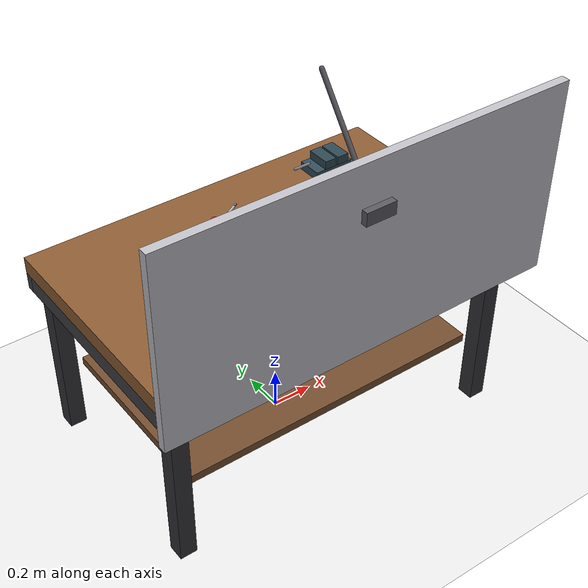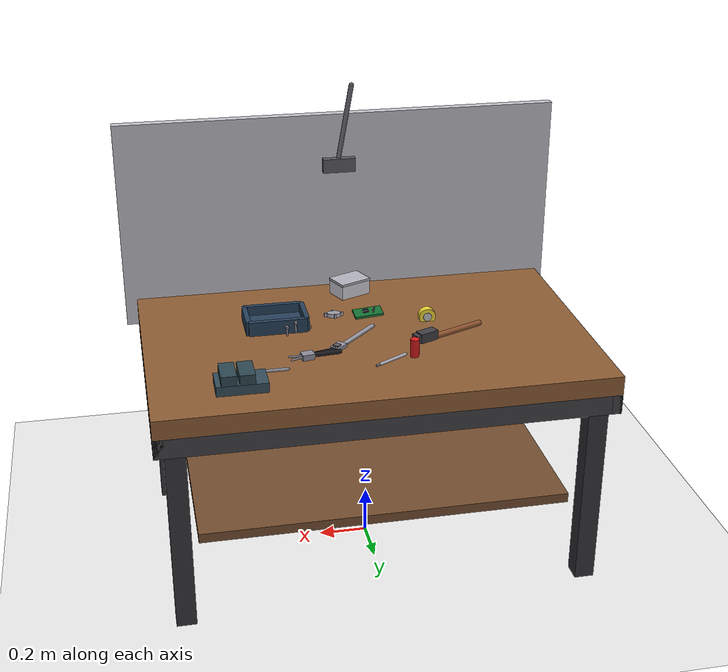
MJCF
<mujoco model="cluttered_workbench">
  <compiler angle="degree" coordinate="local"/>
  <option timestep="0.002" gravity="0 0 -9.81" integrator="RK4"/>
  <size njmax="2000" nconmax="500"/>
  <visual>
    <headlight diffuse="0.7 0.7 0.7" ambient="0.25 0.25 0.25" specular="0.2 0.2 0.2"/>
    <rgba haze="0 0 0 0"/>
  </visual>

  <asset>
    <!-- No textures/materials per guidelines -->
  </asset>

  <worldbody>
    <!-- Ground -->
    <geom name="ground" type="plane" pos="0 0 0" size="5 5 0.1"
          rgba="0.92 0.92 0.92 1" friction="1 0.01 0.001"/>

    <!-- Workbench: tabletop and legs -->
    <body name="bench" pos="0 0 0">
      <!-- Tabletop -->
      <geom name="tabletop" type="box" pos="0 0 0.9" size="0.9 0.55 0.04"
            rgba="0.55 0.36 0.20 1" friction="1.2 0.01 0.001"/>

      <!-- Apron/frame -->
      <geom name="apron_front" type="box" pos="0 0.53 0.82" size="0.9 0.02 0.04"
            rgba="0.25 0.25 0.27 1"/>
      <geom name="apron_back" type="box" pos="0 -0.53 0.82" size="0.9 0.02 0.04"
            rgba="0.25 0.25 0.27 1"/>
      <geom name="apron_left" type="box" pos="-0.88 0 0.82" size="0.02 0.55 0.04"
            rgba="0.25 0.25 0.27 1"/>
      <geom name="apron_right" type="box" pos="0.88 0 0.82" size="0.02 0.55 0.04"
            rgba="0.25 0.25 0.27 1"/>

      <!-- Legs -->
      <geom name="leg_fl" type="box" pos="-0.82 0.48 0.45" size="0.04 0.04 0.45"
            rgba="0.20 0.20 0.22 1"/>
      <geom name="leg_fr" type="box" pos="0.82 0.48 0.45" size="0.04 0.04 0.45"
            rgba="0.20 0.20 0.22 1"/>
      <geom name="leg_bl" type="box" pos="-0.82 -0.48 0.45" size="0.04 0.04 0.45"
            rgba="0.20 0.20 0.22 1"/>
      <geom name="leg_br" type="box" pos="0.82 -0.48 0.45" size="0.04 0.04 0.45"
            rgba="0.20 0.20 0.22 1"/>

      <!-- Lower shelf -->
      <geom name="shelf" type="box" pos="0 0 0.35" size="0.75 0.45 0.02"
            rgba="0.45 0.30 0.18 1" friction="1.1 0.01 0.001"/>

      <!-- Backboard / small wall behind bench -->
      <geom name="backboard" type="box" pos="0 -0.62 1.25" size="0.95 0.02 0.45"
            rgba="0.75 0.75 0.78 1"/>

      <!-- Pegboard holes implied; no textures -->

      <!-- CLUTTER ON TABLETOP (all free-moving objects) -->

      <!-- Hammer -->
      <body name="hammer" pos="-0.35 0.10 0.98" quat="0.98 0.0 0.0 0.2">
        <freejoint name="hammer_free"/>
        <!-- Handle -->
        <geom name="hammer_handle" type="capsule" fromto="-0.12 0 0  0.12 0 0" size="0.012"
              rgba="0.55 0.32 0.18 1" mass="0.25" friction="1.2 0.01 0.001"/>
        <!-- Head -->
        <geom name="hammer_head" type="box" pos="0.145 0 0.015" size="0.04 0.02 0.02"
              rgba="0.25 0.25 0.27 1" mass="0.5" friction="1.0 0.01 0.001"/>
        <!-- Claw-ish end as another box -->
        <geom name="hammer_claw" type="box" pos="0.19 0 0.015" size="0.015 0.02 0.015"
              rgba="0.25 0.25 0.27 1" mass="0.15"/>
      </body>

      <!-- Screwdriver -->
      <body name="screwdriver" pos="-0.10 0.25 0.965" quat="0.9659 0 0 0.2588">
        <freejoint name="screwdriver_free"/>
        <!-- Handle -->
        <geom name="screwdriver_handle" type="cylinder" pos="-0.06 0 0" size="0.018 0.05"
              rgba="0.85 0.10 0.10 1" mass="0.12" friction="1.1 0.01 0.001"/>
        <!-- Shaft -->
        <geom name="screwdriver_shaft" type="capsule" fromto="-0.01 0 0  0.12 0 0" size="0.006"
              rgba="0.70 0.70 0.75 1" mass="0.08" friction="0.8 0.01 0.001"/>
        <!-- Tip -->
        <geom name="screwdriver_tip" type="box" pos="0.135 0 0" size="0.008 0.004 0.003"
              rgba="0.55 0.55 0.60 1" mass="0.01"/>
      </body>

      <!-- Wrench -->
      <body name="wrench" pos="0.05 0.05 0.965" quat="0.9239 0 0 0.3827">
        <freejoint name="wrench_free"/>
        <geom name="wrench_handle" type="capsule" fromto="-0.12 0 0  0.10 0 0" size="0.009"
              rgba="0.60 0.60 0.65 1" mass="0.18" friction="0.9 0.01 0.001"/>
        <geom name="wrench_jaw" type="box" pos="0.125 0 0.004" size="0.03 0.02 0.008"
              rgba="0.60 0.60 0.65 1" mass="0.12"/>
        <geom name="wrench_jaw_gap" type="box" pos="0.135 0.0 0.014" size="0.012 0.012 0.004"
              rgba="0.35 0.35 0.38 1" mass="0.01"/>
      </body>

      <!-- Pliers -->
      <body name="pliers" pos="0.25 0.18 0.965" quat="0.9962 0 0 0.0872">
        <freejoint name="pliers_free"/>
        <!-- Two handles -->
        <geom name="pliers_handle1" type="capsule" fromto="-0.11 -0.01 0  0.00 0.00 0" size="0.010"
              rgba="0.10 0.10 0.12 1" mass="0.10" friction="1.0 0.01 0.001"/>
        <geom name="pliers_handle2" type="capsule" fromto="-0.11 0.01 0  0.00 0.00 0" size="0.010"
              rgba="0.10 0.10 0.12 1" mass="0.10" friction="1.0 0.01 0.001"/>
        <!-- Head -->
        <geom name="pliers_head" type="box" pos="0.02 0 0.0" size="0.025 0.02 0.012"
              rgba="0.55 0.55 0.60 1" mass="0.12" friction="0.9 0.01 0.001"/>
        <!-- Jaws -->
        <geom name="pliers_jaw1" type="capsule" fromto="0.04 0.006 0  0.09 0.016 0" size="0.004"
              rgba="0.55 0.55 0.60 1" mass="0.03"/>
        <geom name="pliers_jaw2" type="capsule" fromto="0.04 -0.006 0  0.09 -0.016 0" size="0.004"
              rgba="0.55 0.55 0.60 1" mass="0.03"/>
      </body>

      <!-- Small parts tray -->
      <body name="parts_tray" pos="0.35 -0.15 0.95" quat="1 0 0 0">
        <freejoint name="parts_tray_free"/>
        <geom name="tray_base" type="box" pos="0 0 0.01" size="0.12 0.08 0.01"
              rgba="0.15 0.25 0.35 1" mass="0.25" friction="1.1 0.01 0.001"/>
        <geom name="tray_wall_front" type="box" pos="0 0.08 0.03" size="0.12 0.01 0.03"
              rgba="0.15 0.25 0.35 1" mass="0.05"/>
        <geom name="tray_wall_back" type="box" pos="0 -0.08 0.03" size="0.12 0.01 0.03"
              rgba="0.15 0.25 0.35 1" mass="0.05"/>
        <geom name="tray_wall_left" type="box" pos="-0.12 0 0.03" size="0.01 0.08 0.03"
              rgba="0.15 0.25 0.35 1" mass="0.05"/>
        <geom name="tray_wall_right" type="box" pos="0.12 0 0.03" size="0.01 0.08 0.03"
              rgba="0.15 0.25 0.35 1" mass="0.05"/>
      </body>

      <!-- Loose bolts (cylinders) -->
      <body name="bolt1" pos="0.28 -0.05 0.965">
        <freejoint name="bolt1_free"/>
        <geom name="bolt1_shaft" type="cylinder" pos="0 0 0.01" size="0.004 0.02"
              rgba="0.55 0.55 0.60 1" mass="0.01" friction="0.6 0.01 0.001"/>
        <geom name="bolt1_head" type="box" pos="0 0 0.035" size="0.007 0.007 0.004"
              rgba="0.50 0.50 0.55 1" mass="0.005"/>
      </body>

      <body name="bolt2" pos="0.32 -0.02 0.965" quat="0.99 0 0 0.14">
        <freejoint name="bolt2_free"/>
        <geom name="bolt2_shaft" type="cylinder" pos="0 0 0.012" size="0.004 0.018"
              rgba="0.55 0.55 0.60 1" mass="0.01" friction="0.6 0.01 0.001"/>
        <geom name="bolt2_head" type="box" pos="0 0 0.032" size="0.007 0.007 0.004"
              rgba="0.50 0.50 0.55 1" mass="0.005"/>
      </body>

      <body name="nut1" pos="0.22 -0.08 0.955">
        <freejoint name="nut1_free"/>
        <geom name="nut1" type="cylinder" pos="0 0 0.006" size="0.008 0.006"
              rgba="0.55 0.55 0.60 1" mass="0.006" friction="0.7 0.01 0.001"/>
        <geom name="nut1_hole" type="cylinder" pos="0 0 0.006" size="0.004 0.006"
              rgba="0.35 0.35 0.38 1" mass="0.001" contype="0" conaffinity="0"/>
      </body>

      <!-- Small gear (approximated as cylinder) -->
      <body name="gear" pos="0.10 -0.18 0.955" quat="0.996 0.087 0 0">
        <freejoint name="gear_free"/>
        <geom name="gear_disc" type="cylinder" pos="0 0 0.008" size="0.03 0.008"
              rgba="0.65 0.65 0.70 1" mass="0.05" friction="0.8 0.01 0.001"/>
        <!-- Teeth hint with small boxes around (non-global) -->
        <geom name="gear_tooth1" type="box" pos="0.034 0 0.008" size="0.006 0.004 0.008"
              rgba="0.60 0.60 0.65 1" mass="0.003"/>
        <geom name="gear_tooth2" type="box" pos="-0.034 0 0.008" size="0.006 0.004 0.008"
              rgba="0.60 0.60 0.65 1" mass="0.003"/>
        <geom name="gear_tooth3" type="box" pos="0 0.034 0.008" size="0.004 0.006 0.008"
              rgba="0.60 0.60 0.65 1" mass="0.003"/>
        <geom name="gear_tooth4" type="box" pos="0 -0.034 0.008" size="0.004 0.006 0.008"
              rgba="0.60 0.60 0.65 1" mass="0.003"/>
      </body>

      <!-- Small electronic part (PCB) -->
      <body name="pcb" pos="-0.05 -0.20 0.945" quat="0.999 0 0.04 0">
        <freejoint name="pcb_free"/>
        <geom name="pcb_board" type="box" pos="0 0 0.005" size="0.06 0.04 0.005"
              rgba="0.08 0.45 0.20 1" mass="0.03" friction="1.0 0.01 0.001"/>
        <geom name="pcb_chip" type="box" pos="0.01 0.0 0.013" size="0.012 0.010 0.006"
              rgba="0.10 0.10 0.12 1" mass="0.01"/>
        <geom name="pcb_cap1" type="cylinder" pos="-0.02 0.015 0.012" size="0.004 0.007"
              rgba="0.15 0.15 0.17 1" mass="0.003"/>
        <geom name="pcb_cap2" type="cylinder" pos="-0.03 -0.015 0.012" size="0.004 0.007"
              rgba="0.15 0.15 0.17 1" mass="0.003"/>
      </body>

      <!-- Tape roll (torus-like approximated by two cylinders: ring + hole non-colliding) -->
      <body name="tape_roll" pos="-0.28 -0.10 0.96" quat="0.7071 0.7071 0 0">
        <freejoint name="tape_roll_free"/>
        <geom name="tape_outer" type="cylinder" pos="0 0 0" size="0.035 0.015"
              rgba="0.95 0.85 0.20 1" mass="0.04" friction="1.0 0.01 0.001"/>
        <geom name="tape_hole" type="cylinder" pos="0 0 0" size="0.018 0.016"
              rgba="0.75 0.75 0.78 1" mass="0.001" contype="0" conaffinity="0"/>
      </body>

      <!-- Small box of parts -->
      <body name="parts_box" pos="0.00 -0.35 0.98" quat="0.98 0 0 0.20">
        <freejoint name="parts_box_free"/>
        <geom name="parts_box_base" type="box" pos="0 0 0.03" size="0.07 0.05 0.03"
              rgba="0.85 0.85 0.88 1" mass="0.12" friction="1.1 0.01 0.001"/>
        <geom name="parts_box_lid" type="box" pos="0 0 0.065" size="0.071 0.051 0.005"
              rgba="0.70 0.70 0.74 1" mass="0.03"/>
      </body>

      <!-- Vise (fixed to table) -->
      <body name="vise" pos="0.55 0.35 0.94">
        <!-- Base clamp -->
        <geom name="vise_base" type="box" pos="0 0 0.02" size="0.10 0.06 0.02"
              rgba="0.20 0.30 0.35 1" friction="1.4 0.01 0.001"/>
        <!-- Fixed jaw -->
        <geom name="vise_jaw_fixed" type="box" pos="0.05 0 0.06" size="0.03 0.06 0.02"
              rgba="0.18 0.28 0.32 1"/>
        <!-- Moving jaw (kept fixed for simplicity) -->
        <geom name="vise_jaw_move" type="box" pos="-0.02 0 0.06" size="0.03 0.06 0.02"
              rgba="0.18 0.28 0.32 1"/>
        <!-- Screw handle -->
        <geom name="vise_handle" type="capsule" fromto="-0.10 0 0.06  -0.18 0 0.06" size="0.006"
              rgba="0.55 0.55 0.60 1"/>
      </body>
    </body>

    <!-- Simple overhead lamp (static) -->
    <body name="lamp" pos="0 0 1.9">
      <geom name="lamp_arm" type="capsule" fromto="0.0 -0.3 0.0  0.0 -0.6 -0.4" size="0.01"
            rgba="0.35 0.35 0.38 1"/>
      <geom name="lamp_head" type="box" pos="0 -0.62 -0.42" size="0.07 0.05 0.03"
            rgba="0.35 0.35 0.38 1"/>
      <light name="lamp_light" pos="0 -0.62 1.48" dir="0 0 -1" directional="false"
             diffuse="1 1 1" specular="0.2 0.2 0.2" attenuation="0.6 0.0 0.0" cutoff="45"/>
    </body>

    <!-- Camera for a nice view -->
    <camera name="main_cam" pos="1.8 1.2 1.6" xyaxes="-0.55 0.83 0  -0.35 -0.23 0.91"/>
  </worldbody>
</mujoco>
